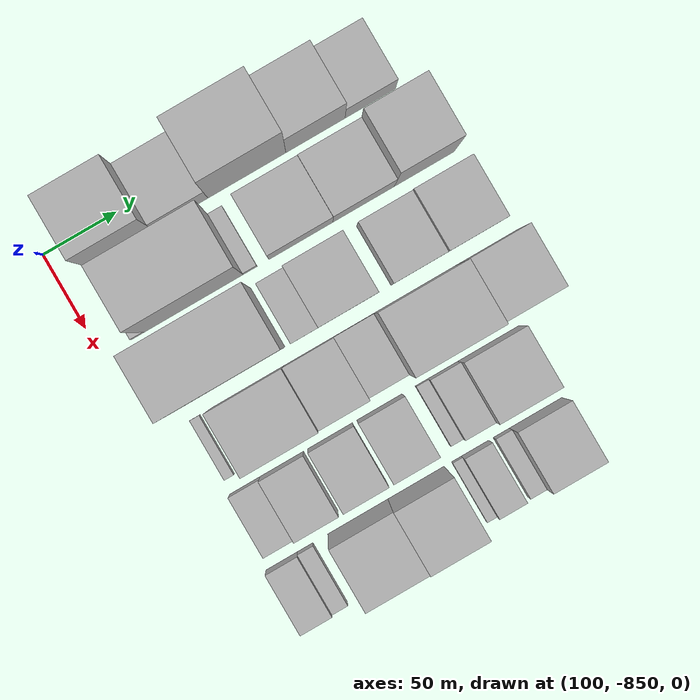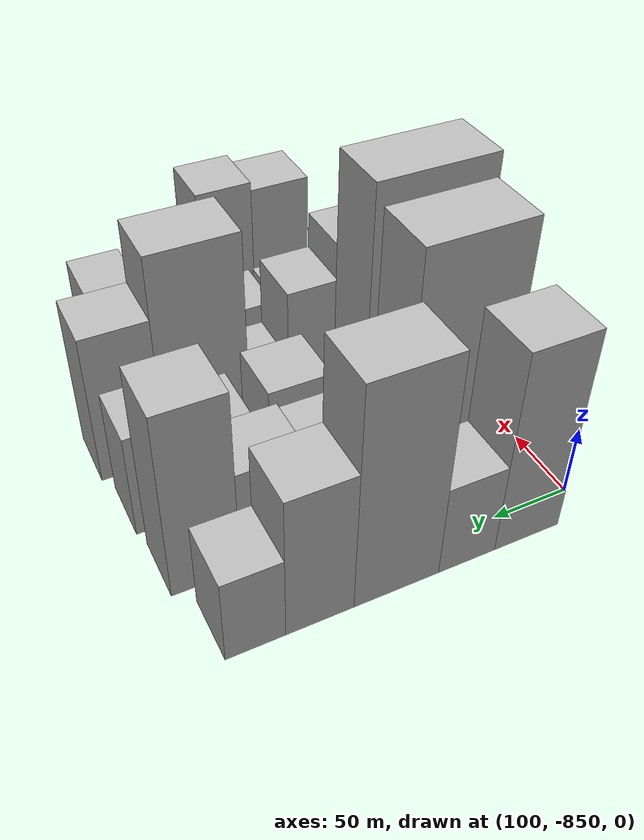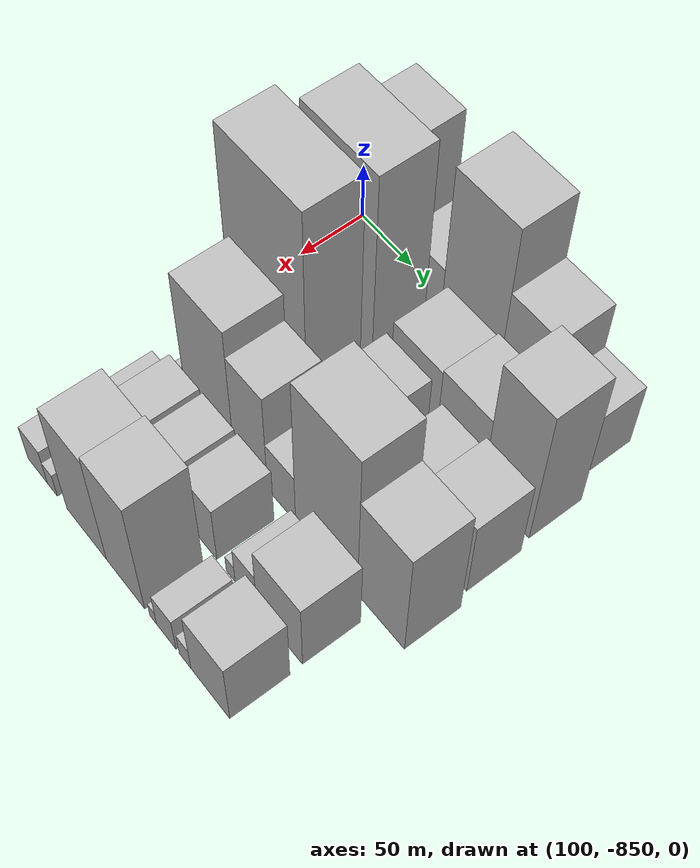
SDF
<sdf version="1.6">
 <world name="default">
  <model name="building_1">
   <static>1</static>
   <pose>100.0000 -808.2663 0 0.000000 0.000000 0.000000</pose>
   <link name="link">
    <pose>0 0 72.00 0 0 0</pose>
    <collision name="collision"><geometry><box><size>40.0000 43.4674 144.0000</size></box></geometry></collision>
    <visual name="visual">
     <cast_shadows>0</cast_shadows>
     <geometry><box><size>40.0000 43.4674 144.0000</size></box></geometry>
     <material>
      <script>
       <uri>model://HANNAS_wall/materials/scripts</uri>
       <uri>model://HANNAS_wall/materials/textures</uri>
       <name>vrc/HANNAS_wall</name>
      </script>
     </material>
    </visual>
   </link>
  </model>
  <model name="building_2">
   <static>1</static>
   <pose>100.0000 -768.1492 0 0.000000 0.000000 0.000000</pose>
   <link name="link">
    <pose>0 0 33.00 0 0 0</pose>
    <collision name="collision"><geometry><box><size>40.0000 36.7668 66.0000</size></box></geometry></collision>
    <visual name="visual">
     <cast_shadows>0</cast_shadows>
     <geometry><box><size>40.0000 36.7668 66.0000</size></box></geometry>
     <material>
      <script>
       <uri>model://HANNAS_wall/materials/scripts</uri>
       <uri>model://HANNAS_wall/materials/textures</uri>
       <name>vrc/HANNAS_wall</name>
      </script>
     </material>
    </visual>
   </link>
  </model>
  <model name="building_3">
   <static>1</static>
   <pose>100.0000 -723.4116 0 0.000000 0.000000 0.000000</pose>
   <link name="link">
    <pose>0 0 79.50 0 0 0</pose>
    <collision name="collision"><geometry><box><size>40.0000 52.7085 159.0000</size></box></geometry></collision>
    <visual name="visual">
     <cast_shadows>0</cast_shadows>
     <geometry><box><size>40.0000 52.7085 159.0000</size></box></geometry>
     <material>
      <script>
       <uri>model://HANNAS_wall/materials/scripts</uri>
       <uri>model://HANNAS_wall/materials/textures</uri>
       <name>vrc/HANNAS_wall</name>
      </script>
     </material>
    </visual>
   </link>
  </model>
  <model name="building_4">
   <static>1</static>
   <pose>100.0000 -677.0546 0 0.000000 0.000000 0.000000</pose>
   <link name="link">
    <pose>0 0 51.00 0 0 0</pose>
    <collision name="collision"><geometry><box><size>40.0000 40.0053 102.0000</size></box></geometry></collision>
    <visual name="visual">
     <cast_shadows>0</cast_shadows>
     <geometry><box><size>40.0000 40.0053 102.0000</size></box></geometry>
     <material>
      <script>
       <uri>model://HANNAS_wall/materials/scripts</uri>
       <uri>model://HANNAS_wall/materials/textures</uri>
       <name>vrc/HANNAS_wall</name>
      </script>
     </material>
    </visual>
   </link>
  </model>
  <model name="building_5">
   <static>1</static>
   <pose>100.0000 -640.0161 0 0.000000 0.000000 0.000000</pose>
   <link name="link">
    <pose>0 0 30.00 0 0 0</pose>
    <collision name="collision"><geometry><box><size>40.0000 34.0717 60.0000</size></box></geometry></collision>
    <visual name="visual">
     <cast_shadows>0</cast_shadows>
     <geometry><box><size>40.0000 34.0717 60.0000</size></box></geometry>
     <material>
      <script>
       <uri>model://HANNAS_wall/materials/scripts</uri>
       <uri>model://HANNAS_wall/materials/textures</uri>
       <name>vrc/HANNAS_wall</name>
      </script>
     </material>
    </visual>
   </link>
  </model>
  <model name="building_46">
   <static>1</static>
   <pose>149.0000 -825.7551 0 0.000000 0.000000 0.000000</pose>
   <link name="link">
    <pose>0 0 9.00 0 0 0</pose>
    <collision name="collision"><geometry><box><size>40.0000 8.4897 18.0000</size></box></geometry></collision>
    <visual name="visual">
     <cast_shadows>0</cast_shadows>
     <geometry><box><size>40.0000 8.4897 18.0000</size></box></geometry>
     <material>
      <script>
       <uri>model://HANNAS_wall/materials/scripts</uri>
       <uri>model://HANNAS_wall/materials/textures</uri>
       <name>vrc/HANNAS_wall</name>
      </script>
     </material>
    </visual>
   </link>
  </model>
  <model name="building_47">
   <static>1</static>
   <pose>149.0000 -787.9768 0 0.000000 0.000000 0.000000</pose>
   <link name="link">
    <pose>0 0 91.50 0 0 0</pose>
    <collision name="collision"><geometry><box><size>40.0000 67.0671 183.0000</size></box></geometry></collision>
    <visual name="visual">
     <cast_shadows>0</cast_shadows>
     <geometry><box><size>40.0000 67.0671 183.0000</size></box></geometry>
     <material>
      <script>
       <uri>model://HANNAS_wall/materials/scripts</uri>
       <uri>model://HANNAS_wall/materials/textures</uri>
       <name>vrc/HANNAS_wall</name>
      </script>
     </material>
    </visual>
   </link>
  </model>
  <model name="building_48">
   <static>1</static>
   <pose>149.0000 -749.7250 0 0.000000 0.000000 0.000000</pose>
   <link name="link">
    <pose>0 0 10.50 0 0 0</pose>
    <collision name="collision"><geometry><box><size>40.0000 9.4365 21.0000</size></box></geometry></collision>
    <visual name="visual">
     <cast_shadows>0</cast_shadows>
     <geometry><box><size>40.0000 9.4365 21.0000</size></box></geometry>
     <material>
      <script>
       <uri>model://HANNAS_wall/materials/scripts</uri>
       <uri>model://HANNAS_wall/materials/textures</uri>
       <name>vrc/HANNAS_wall</name>
      </script>
     </material>
    </visual>
   </link>
  </model>
  <model name="building_49">
   <static>1</static>
   <pose>149.0000 -715.4548 0 0.000000 0.000000 0.000000</pose>
   <link name="link">
    <pose>0 0 36.00 0 0 0</pose>
    <collision name="collision"><geometry><box><size>40.0000 43.1039 72.0000</size></box></geometry></collision>
    <visual name="visual">
     <cast_shadows>0</cast_shadows>
     <geometry><box><size>40.0000 43.1039 72.0000</size></box></geometry>
     <material>
      <script>
       <uri>model://HANNAS_wall/materials/scripts</uri>
       <uri>model://HANNAS_wall/materials/textures</uri>
       <name>vrc/HANNAS_wall</name>
      </script>
     </material>
    </visual>
   </link>
  </model>
  <model name="building_50">
   <static>1</static>
   <pose>149.0000 -673.1103 0 0.000000 0.000000 0.000000</pose>
   <link name="link">
    <pose>0 0 37.50 0 0 0</pose>
    <collision name="collision"><geometry><box><size>40.0000 41.5851 75.0000</size></box></geometry></collision>
    <visual name="visual">
     <cast_shadows>0</cast_shadows>
     <geometry><box><size>40.0000 41.5851 75.0000</size></box></geometry>
     <material>
      <script>
       <uri>model://HANNAS_wall/materials/scripts</uri>
       <uri>model://HANNAS_wall/materials/textures</uri>
       <name>vrc/HANNAS_wall</name>
      </script>
     </material>
    </visual>
   </link>
  </model>
  <model name="building_51">
   <static>1</static>
   <pose>149.0000 -632.1052 0 0.000000 0.000000 0.000000</pose>
   <link name="link">
    <pose>0 0 66.00 0 0 0</pose>
    <collision name="collision"><geometry><box><size>40.0000 40.4250 132.0000</size></box></geometry></collision>
    <visual name="visual">
     <cast_shadows>0</cast_shadows>
     <geometry><box><size>40.0000 40.4250 132.0000</size></box></geometry>
     <material>
      <script>
       <uri>model://HANNAS_wall/materials/scripts</uri>
       <uri>model://HANNAS_wall/materials/textures</uri>
       <name>vrc/HANNAS_wall</name>
      </script>
     </material>
    </visual>
   </link>
  </model>
  <model name="building_97">
   <static>1</static>
   <pose>198.0000 -792.3456 0 0.000000 0.000000 0.000000</pose>
   <link name="link">
    <pose>0 0 96.00 0 0 0</pose>
    <collision name="collision"><geometry><box><size>40.0000 75.3089 192.0000</size></box></geometry></collision>
    <visual name="visual">
     <cast_shadows>0</cast_shadows>
     <geometry><box><size>40.0000 75.3089 192.0000</size></box></geometry>
     <material>
      <script>
       <uri>model://HANNAS_wall/materials/scripts</uri>
       <uri>model://HANNAS_wall/materials/textures</uri>
       <name>vrc/HANNAS_wall</name>
      </script>
     </material>
    </visual>
   </link>
  </model>
  <model name="building_98">
   <static>1</static>
   <pose>198.0000 -741.5462 0 0.000000 0.000000 0.000000</pose>
   <link name="link">
    <pose>0 0 16.50 0 0 0</pose>
    <collision name="collision"><geometry><box><size>40.0000 18.2899 33.0000</size></box></geometry></collision>
    <visual name="visual">
     <cast_shadows>0</cast_shadows>
     <geometry><box><size>40.0000 18.2899 33.0000</size></box></geometry>
     <material>
      <script>
       <uri>model://HANNAS_wall/materials/scripts</uri>
       <uri>model://HANNAS_wall/materials/textures</uri>
       <name>vrc/HANNAS_wall</name>
      </script>
     </material>
    </visual>
   </link>
  </model>
  <model name="building_99">
   <static>1</static>
   <pose>198.0000 -712.7181 0 0.000000 0.000000 0.000000</pose>
   <link name="link">
    <pose>0 0 37.50 0 0 0</pose>
    <collision name="collision"><geometry><box><size>40.0000 39.3663 75.0000</size></box></geometry></collision>
    <visual name="visual">
     <cast_shadows>0</cast_shadows>
     <geometry><box><size>40.0000 39.3663 75.0000</size></box></geometry>
     <material>
      <script>
       <uri>model://HANNAS_wall/materials/scripts</uri>
       <uri>model://HANNAS_wall/materials/textures</uri>
       <name>vrc/HANNAS_wall</name>
      </script>
     </material>
    </visual>
   </link>
  </model>
  <model name="building_100">
   <static>1</static>
   <pose>198.0000 -665.2020 0 0.000000 0.000000 0.000000</pose>
   <link name="link">
    <pose>0 0 31.50 0 0 0</pose>
    <collision name="collision"><geometry><box><size>40.0000 35.6659 63.0000</size></box></geometry></collision>
    <visual name="visual">
     <cast_shadows>0</cast_shadows>
     <geometry><box><size>40.0000 35.6659 63.0000</size></box></geometry>
     <material>
      <script>
       <uri>model://HANNAS_wall/materials/scripts</uri>
       <uri>model://HANNAS_wall/materials/textures</uri>
       <name>vrc/HANNAS_wall</name>
      </script>
     </material>
    </visual>
   </link>
  </model>
  <model name="building_101">
   <static>1</static>
   <pose>198.0000 -628.0444 0 0.000000 0.000000 0.000000</pose>
   <link name="link">
    <pose>0 0 37.50 0 0 0</pose>
    <collision name="collision"><geometry><box><size>40.0000 38.6493 75.0000</size></box></geometry></collision>
    <visual name="visual">
     <cast_shadows>0</cast_shadows>
     <geometry><box><size>40.0000 38.6493 75.0000</size></box></geometry>
     <material>
      <script>
       <uri>model://HANNAS_wall/materials/scripts</uri>
       <uri>model://HANNAS_wall/materials/textures</uri>
       <name>vrc/HANNAS_wall</name>
      </script>
     </material>
    </visual>
   </link>
  </model>
  <model name="building_143">
   <static>1</static>
   <pose>247.0000 -820.7951 0 0.000000 0.000000 0.000000</pose>
   <link name="link">
    <pose>0 0 7.50 0 0 0</pose>
    <collision name="collision"><geometry><box><size>40.0000 6.4097 15.0000</size></box></geometry></collision>
    <visual name="visual">
     <cast_shadows>0</cast_shadows>
     <geometry><box><size>40.0000 6.4097 15.0000</size></box></geometry>
     <material>
      <script>
       <uri>model://HANNAS_wall/materials/scripts</uri>
       <uri>model://HANNAS_wall/materials/textures</uri>
       <name>vrc/HANNAS_wall</name>
      </script>
     </material>
    </visual>
   </link>
  </model>
  <model name="building_144">
   <static>1</static>
   <pose>247.0000 -785.1704 0 0.000000 0.000000 0.000000</pose>
   <link name="link">
    <pose>0 0 61.50 0 0 0</pose>
    <collision name="collision"><geometry><box><size>40.0000 48.8398 123.0000</size></box></geometry></collision>
    <visual name="visual">
     <cast_shadows>0</cast_shadows>
     <geometry><box><size>40.0000 48.8398 123.0000</size></box></geometry>
     <material>
      <script>
       <uri>model://HANNAS_wall/materials/scripts</uri>
       <uri>model://HANNAS_wall/materials/textures</uri>
       <name>vrc/HANNAS_wall</name>
      </script>
     </material>
    </visual>
   </link>
  </model>
  <model name="building_145">
   <static>1</static>
   <pose>247.0000 -744.2695 0 0.000000 0.000000 0.000000</pose>
   <link name="link">
    <pose>0 0 49.50 0 0 0</pose>
    <collision name="collision"><geometry><box><size>40.0000 32.9618 99.0000</size></box></geometry></collision>
    <visual name="visual">
     <cast_shadows>0</cast_shadows>
     <geometry><box><size>40.0000 32.9618 99.0000</size></box></geometry>
     <material>
      <script>
       <uri>model://HANNAS_wall/materials/scripts</uri>
       <uri>model://HANNAS_wall/materials/textures</uri>
       <name>vrc/HANNAS_wall</name>
      </script>
     </material>
    </visual>
   </link>
  </model>
  <model name="building_146">
   <static>1</static>
   <pose>247.0000 -714.4399 0 0.000000 0.000000 0.000000</pose>
   <link name="link">
    <pose>0 0 25.50 0 0 0</pose>
    <collision name="collision"><geometry><box><size>40.0000 26.6975 51.0000</size></box></geometry></collision>
    <visual name="visual">
     <cast_shadows>0</cast_shadows>
     <geometry><box><size>40.0000 26.6975 51.0000</size></box></geometry>
     <material>
      <script>
       <uri>model://HANNAS_wall/materials/scripts</uri>
       <uri>model://HANNAS_wall/materials/textures</uri>
       <name>vrc/HANNAS_wall</name>
      </script>
     </material>
    </visual>
   </link>
  </model>
  <model name="building_147">
   <static>1</static>
   <pose>247.0000 -672.7868 0 0.000000 0.000000 0.000000</pose>
   <link name="link">
    <pose>0 0 75.00 0 0 0</pose>
    <collision name="collision"><geometry><box><size>40.0000 56.6085 150.0000</size></box></geometry></collision>
    <visual name="visual">
     <cast_shadows>0</cast_shadows>
     <geometry><box><size>40.0000 56.6085 150.0000</size></box></geometry>
     <material>
      <script>
       <uri>model://HANNAS_wall/materials/scripts</uri>
       <uri>model://HANNAS_wall/materials/textures</uri>
       <name>vrc/HANNAS_wall</name>
      </script>
     </material>
    </visual>
   </link>
  </model>
  <model name="building_148">
   <static>1</static>
   <pose>247.0000 -623.9160 0 0.000000 0.000000 0.000000</pose>
   <link name="link">
    <pose>0 0 54.00 0 0 0</pose>
    <collision name="collision"><geometry><box><size>40.0000 41.1330 108.0000</size></box></geometry></collision>
    <visual name="visual">
     <cast_shadows>0</cast_shadows>
     <geometry><box><size>40.0000 41.1330 108.0000</size></box></geometry>
     <material>
      <script>
       <uri>model://HANNAS_wall/materials/scripts</uri>
       <uri>model://HANNAS_wall/materials/textures</uri>
       <name>vrc/HANNAS_wall</name>
      </script>
     </material>
    </visual>
   </link>
  </model>
  <model name="building_197">
   <static>1</static>
   <pose>296.0000 -815.7249 0 0.000000 0.000000 0.000000</pose>
   <link name="link">
    <pose>0 0 18.00 0 0 0</pose>
    <collision name="collision"><geometry><box><size>40.0000 20.5503 36.0000</size></box></geometry></collision>
    <visual name="visual">
     <cast_shadows>0</cast_shadows>
     <geometry><box><size>40.0000 20.5503 36.0000</size></box></geometry>
     <material>
      <script>
       <uri>model://HANNAS_wall/materials/scripts</uri>
       <uri>model://HANNAS_wall/materials/textures</uri>
       <name>vrc/HANNAS_wall</name>
      </script>
     </material>
    </visual>
   </link>
  </model>
  <model name="building_198">
   <static>1</static>
   <pose>296.0000 -790.8034 0 0.000000 0.000000 0.000000</pose>
   <link name="link">
    <pose>0 0 28.50 0 0 0</pose>
    <collision name="collision"><geometry><box><size>40.0000 29.2927 57.0000</size></box></geometry></collision>
    <visual name="visual">
     <cast_shadows>0</cast_shadows>
     <geometry><box><size>40.0000 29.2927 57.0000</size></box></geometry>
     <material>
      <script>
       <uri>model://HANNAS_wall/materials/scripts</uri>
       <uri>model://HANNAS_wall/materials/textures</uri>
       <name>vrc/HANNAS_wall</name>
      </script>
     </material>
    </visual>
   </link>
  </model>
  <model name="building_199">
   <static>1</static>
   <pose>296.0000 -758.1208 0 0.000000 0.000000 0.000000</pose>
   <link name="link">
    <pose>0 0 28.50 0 0 0</pose>
    <collision name="collision"><geometry><box><size>40.0000 30.0726 57.0000</size></box></geometry></collision>
    <visual name="visual">
     <cast_shadows>0</cast_shadows>
     <geometry><box><size>40.0000 30.0726 57.0000</size></box></geometry>
     <material>
      <script>
       <uri>model://HANNAS_wall/materials/scripts</uri>
       <uri>model://HANNAS_wall/materials/textures</uri>
       <name>vrc/HANNAS_wall</name>
      </script>
     </material>
    </visual>
   </link>
  </model>
  <model name="building_200">
   <static>1</static>
   <pose>296.0000 -724.8004 0 0.000000 0.000000 0.000000</pose>
   <link name="link">
    <pose>0 0 28.50 0 0 0</pose>
    <collision name="collision"><geometry><box><size>40.0000 30.5681 57.0000</size></box></geometry></collision>
    <visual name="visual">
     <cast_shadows>0</cast_shadows>
     <geometry><box><size>40.0000 30.5681 57.0000</size></box></geometry>
     <material>
      <script>
       <uri>model://HANNAS_wall/materials/scripts</uri>
       <uri>model://HANNAS_wall/materials/textures</uri>
       <name>vrc/HANNAS_wall</name>
      </script>
     </material>
    </visual>
   </link>
  </model>
  <model name="building_201">
   <static>1</static>
   <pose>296.0000 -696.3324 0 0.000000 0.000000 0.000000</pose>
   <link name="link">
    <pose>0 0 9.00 0 0 0</pose>
    <collision name="collision"><geometry><box><size>40.0000 8.3680 18.0000</size></box></geometry></collision>
    <visual name="visual">
     <cast_shadows>0</cast_shadows>
     <geometry><box><size>40.0000 8.3680 18.0000</size></box></geometry>
     <material>
      <script>
       <uri>model://HANNAS_wall/materials/scripts</uri>
       <uri>model://HANNAS_wall/materials/textures</uri>
       <name>vrc/HANNAS_wall</name>
      </script>
     </material>
    </visual>
   </link>
  </model>
  <model name="building_202">
   <static>1</static>
   <pose>296.0000 -681.9591 0 0.000000 0.000000 0.000000</pose>
   <link name="link">
    <pose>0 0 19.50 0 0 0</pose>
    <collision name="collision"><geometry><box><size>40.0000 20.3785 39.0000</size></box></geometry></collision>
    <visual name="visual">
     <cast_shadows>0</cast_shadows>
     <geometry><box><size>40.0000 20.3785 39.0000</size></box></geometry>
     <material>
      <script>
       <uri>model://HANNAS_wall/materials/scripts</uri>
       <uri>model://HANNAS_wall/materials/textures</uri>
       <name>vrc/HANNAS_wall</name>
      </script>
     </material>
    </visual>
   </link>
  </model>
  <model name="building_203">
   <static>1</static>
   <pose>296.0000 -651.0860 0 0.000000 0.000000 0.000000</pose>
   <link name="link">
    <pose>0 0 34.50 0 0 0</pose>
    <collision name="collision"><geometry><box><size>40.0000 41.3678 69.0000</size></box></geometry></collision>
    <visual name="visual">
     <cast_shadows>0</cast_shadows>
     <geometry><box><size>40.0000 41.3678 69.0000</size></box></geometry>
     <material>
      <script>
       <uri>model://HANNAS_wall/materials/scripts</uri>
       <uri>model://HANNAS_wall/materials/textures</uri>
       <name>vrc/HANNAS_wall</name>
      </script>
     </material>
    </visual>
   </link>
  </model>
  <model name="building_246">
   <static>1</static>
   <pose>345.0000 -819.4158 0 0.000000 0.000000 0.000000</pose>
   <link name="link">
    <pose>0 0 18.00 0 0 0</pose>
    <collision name="collision"><geometry><box><size>40.0000 21.1685 36.0000</size></box></geometry></collision>
    <visual name="visual">
     <cast_shadows>0</cast_shadows>
     <geometry><box><size>40.0000 21.1685 36.0000</size></box></geometry>
     <material>
      <script>
       <uri>model://HANNAS_wall/materials/scripts</uri>
       <uri>model://HANNAS_wall/materials/textures</uri>
       <name>vrc/HANNAS_wall</name>
      </script>
     </material>
    </visual>
   </link>
  </model>
  <model name="building_247">
   <static>1</static>
   <pose>345.0000 -803.5521 0 0.000000 0.000000 0.000000</pose>
   <link name="link">
    <pose>0 0 12.00 0 0 0</pose>
    <collision name="collision"><geometry><box><size>40.0000 10.5587 24.0000</size></box></geometry></collision>
    <visual name="visual">
     <cast_shadows>0</cast_shadows>
     <geometry><box><size>40.0000 10.5587 24.0000</size></box></geometry>
     <material>
      <script>
       <uri>model://HANNAS_wall/materials/scripts</uri>
       <uri>model://HANNAS_wall/materials/textures</uri>
       <name>vrc/HANNAS_wall</name>
      </script>
     </material>
    </visual>
   </link>
  </model>
  <model name="building_248">
   <static>1</static>
   <pose>345.0000 -767.9281 0 0.000000 0.000000 0.000000</pose>
   <link name="link">
    <pose>0 0 55.50 0 0 0</pose>
    <collision name="collision"><geometry><box><size>40.0000 40.6894 111.0000</size></box></geometry></collision>
    <visual name="visual">
     <cast_shadows>0</cast_shadows>
     <geometry><box><size>40.0000 40.6894 111.0000</size></box></geometry>
     <material>
      <script>
       <uri>model://HANNAS_wall/materials/scripts</uri>
       <uri>model://HANNAS_wall/materials/textures</uri>
       <name>vrc/HANNAS_wall</name>
      </script>
     </material>
    </visual>
   </link>
  </model>
  <model name="building_249">
   <static>1</static>
   <pose>345.0000 -728.5560 0 0.000000 0.000000 0.000000</pose>
   <link name="link">
    <pose>0 0 58.50 0 0 0</pose>
    <collision name="collision"><geometry><box><size>40.0000 38.0549 117.0000</size></box></geometry></collision>
    <visual name="visual">
     <cast_shadows>0</cast_shadows>
     <geometry><box><size>40.0000 38.0549 117.0000</size></box></geometry>
     <material>
      <script>
       <uri>model://HANNAS_wall/materials/scripts</uri>
       <uri>model://HANNAS_wall/materials/textures</uri>
       <name>vrc/HANNAS_wall</name>
      </script>
     </material>
    </visual>
   </link>
  </model>
  <model name="building_250">
   <static>1</static>
   <pose>345.0000 -701.2109 0 0.000000 0.000000 0.000000</pose>
   <link name="link">
    <pose>0 0 7.50 0 0 0</pose>
    <collision name="collision"><geometry><box><size>40.0000 6.6352 15.0000</size></box></geometry></collision>
    <visual name="visual">
     <cast_shadows>0</cast_shadows>
     <geometry><box><size>40.0000 6.6352 15.0000</size></box></geometry>
     <material>
      <script>
       <uri>model://HANNAS_wall/materials/scripts</uri>
       <uri>model://HANNAS_wall/materials/textures</uri>
       <name>vrc/HANNAS_wall</name>
      </script>
     </material>
    </visual>
   </link>
  </model>
  <model name="building_251">
   <static>1</static>
   <pose>345.0000 -688.5989 0 0.000000 0.000000 0.000000</pose>
   <link name="link">
    <pose>0 0 18.00 0 0 0</pose>
    <collision name="collision"><geometry><box><size>40.0000 18.5889 36.0000</size></box></geometry></collision>
    <visual name="visual">
     <cast_shadows>0</cast_shadows>
     <geometry><box><size>40.0000 18.5889 36.0000</size></box></geometry>
     <material>
      <script>
       <uri>model://HANNAS_wall/materials/scripts</uri>
       <uri>model://HANNAS_wall/materials/textures</uri>
       <name>vrc/HANNAS_wall</name>
      </script>
     </material>
    </visual>
   </link>
  </model>
  <model name="building_252">
   <static>1</static>
   <pose>345.0000 -670.8168 0 0.000000 0.000000 0.000000</pose>
   <link name="link">
    <pose>0 0 12.00 0 0 0</pose>
    <collision name="collision"><geometry><box><size>40.0000 10.9753 24.0000</size></box></geometry></collision>
    <visual name="visual">
     <cast_shadows>0</cast_shadows>
     <geometry><box><size>40.0000 10.9753 24.0000</size></box></geometry>
     <material>
      <script>
       <uri>model://HANNAS_wall/materials/scripts</uri>
       <uri>model://HANNAS_wall/materials/textures</uri>
       <name>vrc/HANNAS_wall</name>
      </script>
     </material>
    </visual>
   </link>
  </model>
  <model name="building_253">
   <static>1</static>
   <pose>345.0000 -647.5279 0 0.000000 0.000000 0.000000</pose>
   <link name="link">
    <pose>0 0 33.00 0 0 0</pose>
    <collision name="collision"><geometry><box><size>40.0000 35.6025 66.0000</size></box></geometry></collision>
    <visual name="visual">
     <cast_shadows>0</cast_shadows>
     <geometry><box><size>40.0000 35.6025 66.0000</size></box></geometry>
     <material>
      <script>
       <uri>model://HANNAS_wall/materials/scripts</uri>
       <uri>model://HANNAS_wall/materials/textures</uri>
       <name>vrc/HANNAS_wall</name>
      </script>
     </material>
    </visual>
   </link>
  </model>
 </world>
</sdf>
